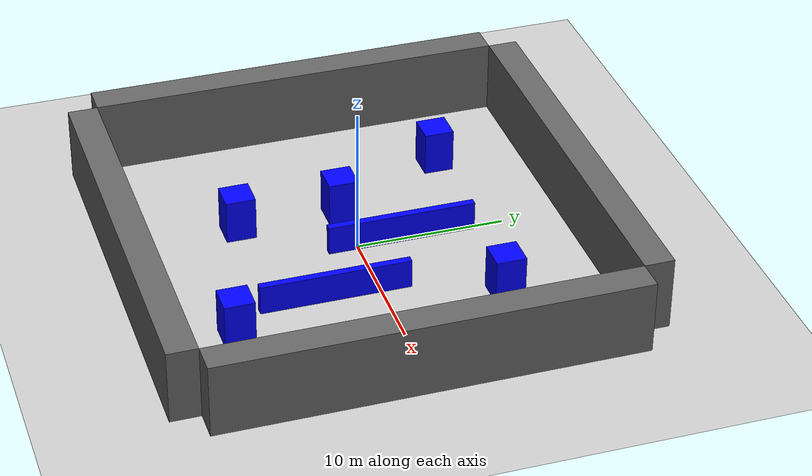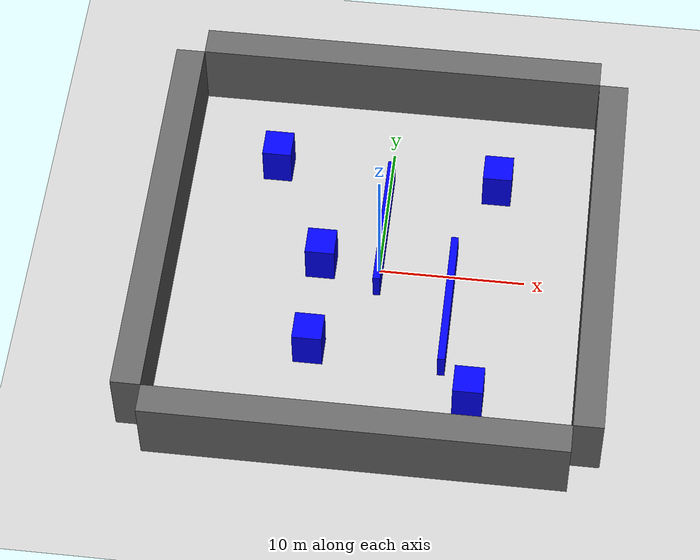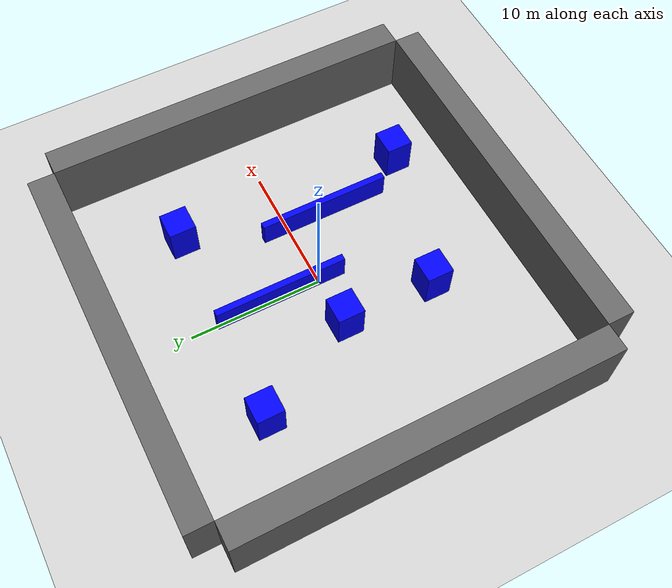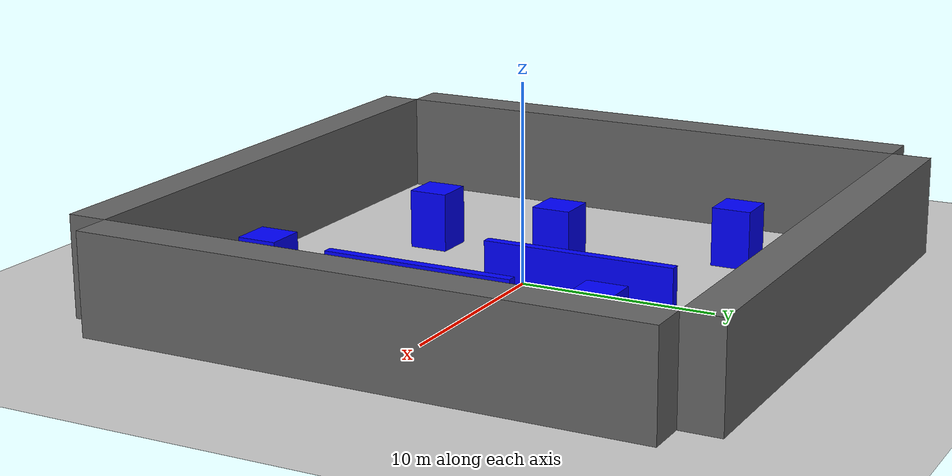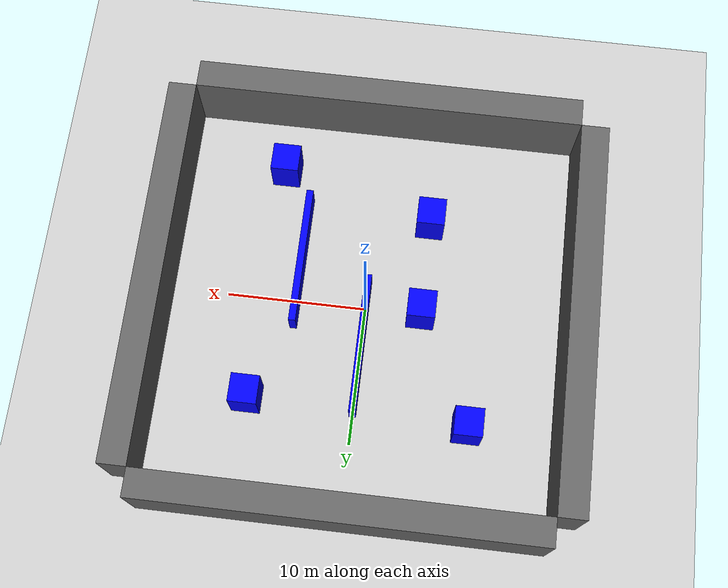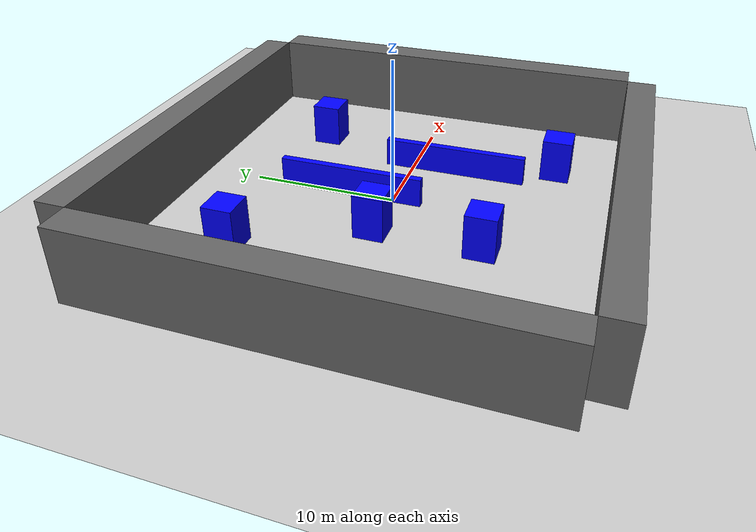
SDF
<sdf version="1.9">
 <world name="my_car_world">
  <physics name="1ms" type="ignored">
   <max_step_size>0.004</max_step_size>
   <real_time_factor>1.0</real_time_factor>
  </physics>
  <plugin filename="ignition-gazebo-sensors-system" name="ignition::gazebo::v6::systems::Sensors"/>
  <plugin filename="ignition-gazebo-physics-system" name="ignition::gazebo::v6::systems::Physics"/>
  <plugin filename="ignition-gazebo-user-commands-system" name="ignition::gazebo::v6::systems::UserCommands"/>
  <plugin filename="ignition-gazebo-scene-broadcaster-system" name="ignition::gazebo::v6::systems::SceneBroadcaster"/>
  <plugin filename="ignition-gazebo-imu-system" name="ignition::gazebo::v6::systems::Imu"/>
  <plugin filename="ignition-gazebo-contact-system" name="ignition::gazebo::v6::systems::Contact"/>
  <plugin filename="ignition-gazebo-pose-publisher-system" name="ignition::gazebo::v6::systems::PosePublisher">
   <publish_link_pose>false</publish_link_pose>
   <publish_sensor_pose>false</publish_sensor_pose>
   <publish_collision_pose>false</publish_collision_pose>
   <publish_visual_pose>false</publish_visual_pose>
   <publish_nested_models>true</publish_nested_models>
   <publish_model_pose>true</publish_model_pose>
   <use_pose_vector_msg>true</use_pose_vector_msg>
   <static_publisher>true</static_publisher>
   <static_update_frequency>10</static_update_frequency>
  </plugin>
  <light type="directional" name="sun">
   <pose>0 0 10 0 0 0</pose>
   <diffuse>0.8 0.8 0.8 1</diffuse>
   <specular>0.2 0.2 0.2 1</specular>
   <attenuation>
    <range>1000</range>
    <constant>0.9</constant>
    <linear>0.01</linear>
    <quadratic>0.001</quadratic>
   </attenuation>
   <direction>-0.5 0.1 -0.9</direction>
  </light>
  <include><uri>model://ground_plane</uri><name>ground_plane</name></include>
  <include><uri>model://map_wall</uri><name>north_wall</name><pose>15 0 2.5 0 0 0</pose></include>
  <include><uri>model://map_wall</uri><name>south_wall</name><pose>-15 0 2.5 0 0 0</pose></include>
  <include><uri>model://map_wall</uri><name>east_wall</name><pose>0 15 2.5 0 0 1.5707</pose></include>
  <include><uri>model://map_wall</uri><name>west_wall</name><pose>0 -15 2.5 0 0 1.5707</pose></include>
  <include><uri>model://box</uri><name>box1</name><pose>7.5 7.5 1.5 0 0 0</pose></include>
  <include><uri>model://box</uri><name>box2</name><pose>7 -10 1.5 0 0 0</pose></include>
  <include><uri>model://box</uri><name>box3</name><pose>-4 0 1.5 0 0 0</pose></include>
  <include><uri>model://box</uri><name>box4</name><pose>-4 -7 1.5 0 0 0</pose></include>
  <include><uri>model://box</uri><name>box5</name><pose>-8 8 1.5 0 0 0</pose></include>
  <include><uri>model://wall</uri><name>wall1</name><pose>5 -3 1 0 0 0</pose></include>
  <include><uri>model://wall</uri><name>wall2</name><pose>0 3 1 0 0 0</pose></include>
 </world>
</sdf>

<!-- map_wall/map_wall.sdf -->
<sdf version="1.9">
    <model name='map_wall'>
        <static>true</static>
        <pose>0 0 0 0 0 0</pose><!--pose
            relative to the world-->
        <link name='map_wall'>
            <visual name='visual'>
                <geometry>
                    <box>
                        <size>2 28 5</size>
                    </box>
                </geometry>
                <!--let's
                    add color to our link-->
                <material>
                    <ambient>0.4 0.4 0.4 1</ambient>
                    <diffuse>0.4 0.4 0.4 1</diffuse>
                    <specular>0.4 0.4 0.4 1</specular>
                </material>
            </visual>
            <collision name='collision'>
                <geometry>
                    <box>
                        <size>2 28 5</size>
                    </box>
                </geometry>
                <surface>
                    <contact>
                        <collide_bitmask>0x01</collide_bitmask>
                    </contact>
                    <friction>
                        <ode>
                            <mu>1.0</mu>
                            <mu2>1.0</mu2>
                        </ode>
                    </friction>
                </surface>
            </collision>
        </link>
    </model>
</sdf>

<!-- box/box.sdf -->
<sdf version="1.9">
    <model name='box'>
        <static>true</static>
        <pose>0 0 0 0 0 0</pose>
        <link name='box'>
            <visual name='visual'>
                <geometry>
                    <box>
                        <size>2 2 3</size>
                    </box>
                </geometry>
                <material>
                    <ambient>0.0 0.0 1.0 1</ambient>
                    <diffuse>0.0 0.0 1.0 1</diffuse>
                    <specular>0.0 0.0 1.0 1</specular>
                </material>
            </visual>
            <collision name='collision'>
                <geometry>
                    <box>
                        <size>2 2 3</size>
                    </box>
                </geometry>
                <surface>
                    <contact>
                        <collide_bitmask>0x01</collide_bitmask>
                    </contact>
                    <friction>
                        <ode>
                            <mu>1.0</mu>
                            <mu2>1.0</mu2>
                        </ode>
                    </friction>
                </surface>
            </collision>
        </link>
    </model>
</sdf>

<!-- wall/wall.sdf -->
<sdf version="1.10">
    <model name='wall'>
        <static>true</static>
        <pose>5 0 0 0 0 0</pose><!--pose
            relative to the world-->
        <link name='box'>
            <visual name='visual'>
                <geometry>
                    <box>
                        <size>0.5 10.0 2.0</size>
                    </box>
                </geometry>
                <!--let's
                    add color to our link-->
                <material>
                    <ambient>0.0 0.0 1.0 1</ambient>
                    <diffuse>0.0 0.0 1.0 1</diffuse>
                    <specular>0.0 0.0 1.0 1</specular>
                </material>
            </visual>
            <collision name='collision'>
                <geometry>
                    <box>
                        <size>0.5 10.0 2.0</size>
                    </box>
                </geometry>
            </collision>
        </link>
    </model>
</sdf>
